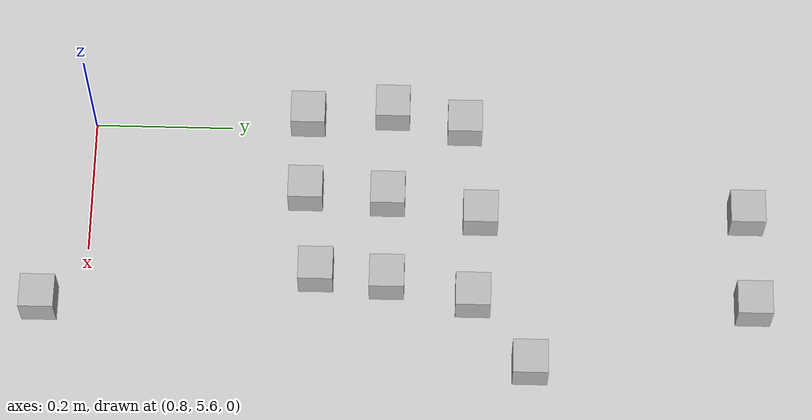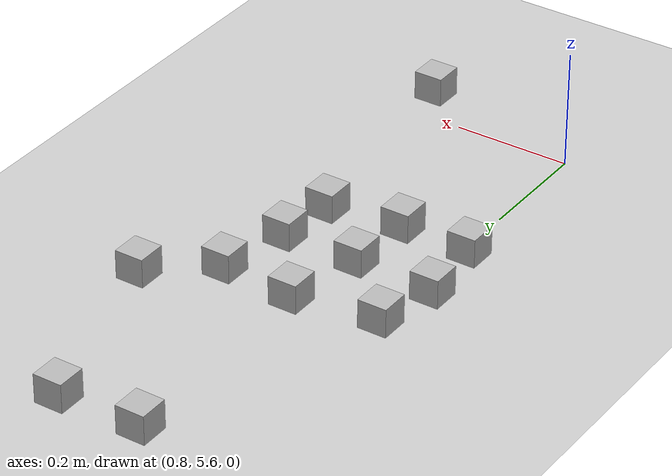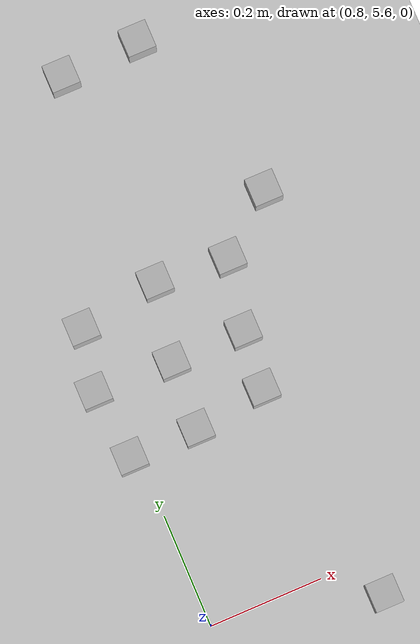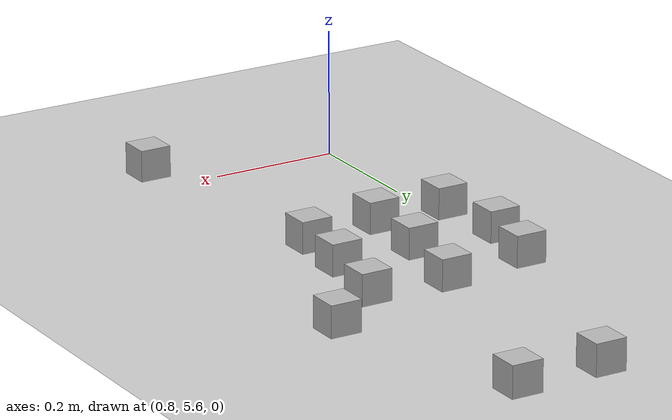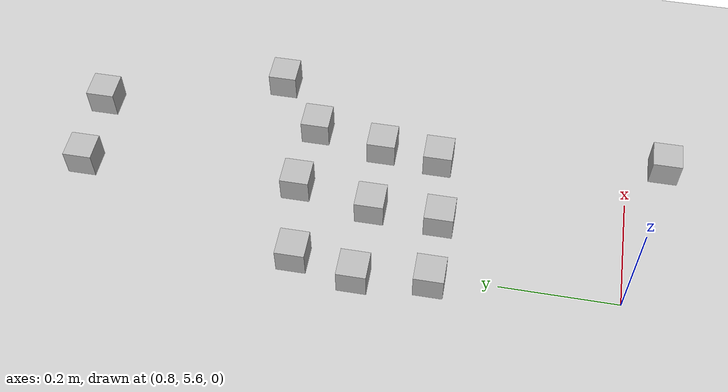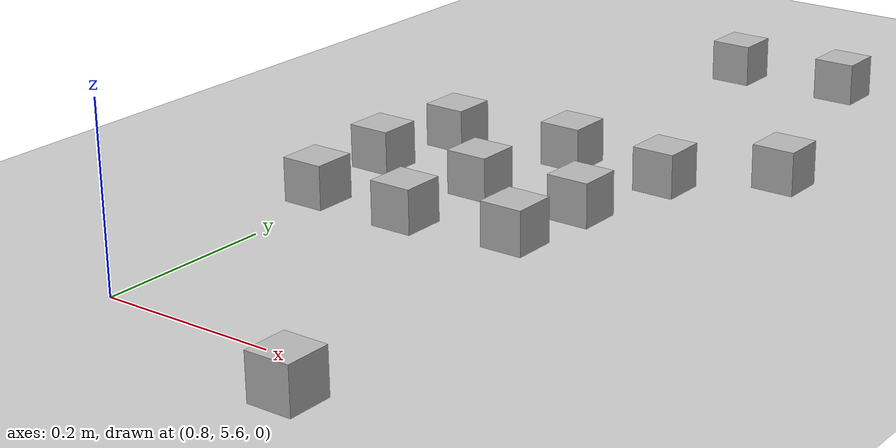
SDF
<sdf version="1.4">
 <world name="default">
  <model name="ground_plane">
   <static>1</static>
   <link name="link">
    <collision name="collision">
     <geometry><plane><normal>0 0 1</normal><size>100 100</size></plane></geometry>
     <surface><friction><ode><mu>100</mu><mu2>50</mu2></ode></friction></surface>
    </collision>
    <visual name="visual">
     <cast_shadows>0</cast_shadows>
     <geometry><plane><normal>0 0 1</normal><size>100 100</size></plane></geometry>
     <material>
      <script><uri>file://media/materials/scripts/gazebo.material</uri><name>Gazebo/Grey</name></script>
     </material>
    </visual>
    <velocity_decay><linear>0</linear><angular>0</angular></velocity_decay>
   </link>
  </model>
  <model name="at25">
   <static>0</static>
   <link name="link">
    <inertial>
     <mass>0.01</mass>
     <inertia><ixx>4e-05</ixx><ixy>0</ixy><ixz>0</ixz><iyy>4e-05</iyy><iyz>0</iyz><izz>4e-05</izz></inertia>
    </inertial>
    <visual name="visual">
     <geometry><box><size>0.05 0.05 0.05</size></box></geometry>
     <material>
      <script>
       <uri>model://at0/materials/scripts</uri>
       <uri>model://at0/materials/textures</uri>
       <name>at0/Diffuse</name>
      </script>
     </material>
    </visual>
    <collision name="collision">
     <geometry><box><size>0.05 0.05 0.05</size></box></geometry>
     <surface><friction><ode><mu>0.8</mu><mu2>0.7</mu2></ode></friction></surface>
    </collision>
    <velocity_decay><linear>0</linear><angular>0</angular></velocity_decay>
   </link>
   <pose>0.795828 6.14263 0.025 0 -0 0</pose>
  </model>
  <model name="at30">
   <static>0</static>
   <link name="link">
    <inertial>
     <mass>0.01</mass>
     <inertia><ixx>4e-05</ixx><ixy>0</ixy><ixz>0</ixz><iyy>4e-05</iyy><iyz>0</iyz><izz>4e-05</izz></inertia>
    </inertial>
    <visual name="visual">
     <geometry><box><size>0.05 0.05 0.05</size></box></geometry>
     <material>
      <script>
       <uri>model://at0/materials/scripts</uri>
       <uri>model://at0/materials/textures</uri>
       <name>at0/Diffuse</name>
      </script>
     </material>
    </visual>
    <collision name="collision">
     <geometry><box><size>0.05 0.05 0.05</size></box></geometry>
     <surface><friction><ode><mu>0.8</mu><mu2>0.7</mu2></ode></friction></surface>
    </collision>
    <velocity_decay><linear>0</linear><angular>0</angular></velocity_decay>
   </link>
   <pose>1.03376 5.93127 0.025 0 -0 0</pose>
  </model>
  <model name="at230">
   <static>0</static>
   <link name="link">
    <inertial>
     <mass>0.01</mass>
     <inertia><ixx>4e-05</ixx><ixy>0</ixy><ixz>0</ixz><iyy>4e-05</iyy><iyz>0</iyz><izz>4e-05</izz></inertia>
    </inertial>
    <visual name="visual">
     <geometry><box><size>0.05 0.05 0.05</size></box></geometry>
     <material>
      <script>
       <uri>model://at0/materials/scripts</uri>
       <uri>model://at0/materials/textures</uri>
       <name>at0/Diffuse</name>
      </script>
     </material>
    </visual>
    <collision name="collision">
     <geometry><box><size>0.05 0.05 0.05</size></box></geometry>
     <surface><friction><ode><mu>0.8</mu><mu2>0.7</mu2></ode></friction></surface>
    </collision>
    <velocity_decay><linear>0</linear><angular>0</angular></velocity_decay>
   </link>
   <pose>0.931648 6.55184 0.025 0 -0 0</pose>
  </model>
  <model name="at235">
   <static>0</static>
   <link name="link">
    <inertial>
     <mass>0.01</mass>
     <inertia><ixx>4e-05</ixx><ixy>0</ixy><ixz>0</ixz><iyy>4e-05</iyy><iyz>0</iyz><izz>4e-05</izz></inertia>
    </inertial>
    <visual name="visual">
     <geometry><box><size>0.05 0.05 0.05</size></box></geometry>
     <material>
      <script>
       <uri>model://at0/materials/scripts</uri>
       <uri>model://at0/materials/textures</uri>
       <name>at0/Diffuse</name>
      </script>
     </material>
    </visual>
    <collision name="collision">
     <geometry><box><size>0.05 0.05 0.05</size></box></geometry>
     <surface><friction><ode><mu>0.8</mu><mu2>0.7</mu2></ode></friction></surface>
    </collision>
    <velocity_decay><linear>0</linear><angular>0</angular></velocity_decay>
   </link>
   <pose>1.07319 6.55794 0.025 0 -0 0</pose>
  </model>
  <model name="at242">
   <static>0</static>
   <link name="link">
    <inertial>
     <mass>0.01</mass>
     <inertia><ixx>4e-05</ixx><ixy>0</ixy><ixz>0</ixz><iyy>4e-05</iyy><iyz>0</iyz><izz>4e-05</izz></inertia>
    </inertial>
    <visual name="visual">
     <geometry><box><size>0.05 0.05 0.05</size></box></geometry>
     <material>
      <script>
       <uri>model://at0/materials/scripts</uri>
       <uri>model://at0/materials/textures</uri>
       <name>at0/Diffuse</name>
      </script>
     </material>
    </visual>
    <collision name="collision">
     <geometry><box><size>0.05 0.05 0.05</size></box></geometry>
     <surface><friction><ode><mu>0.8</mu><mu2>0.7</mu2></ode></friction></surface>
    </collision>
    <velocity_decay><linear>0</linear><angular>0</angular></velocity_decay>
   </link>
   <pose>1.16972 6.23923 0.025 0 -0 0</pose>
  </model>
  <model name="at244">
   <static>0</static>
   <link name="link">
    <inertial>
     <mass>0.01</mass>
     <inertia><ixx>4e-05</ixx><ixy>0</ixy><ixz>0</ixz><iyy>4e-05</iyy><iyz>0</iyz><izz>4e-05</izz></inertia>
    </inertial>
    <visual name="visual">
     <geometry><box><size>0.05 0.05 0.05</size></box></geometry>
     <material>
      <script>
       <uri>model://at0/materials/scripts</uri>
       <uri>model://at0/materials/textures</uri>
       <name>at0/Diffuse</name>
      </script>
     </material>
    </visual>
    <collision name="collision">
     <geometry><box><size>0.05 0.05 0.05</size></box></geometry>
     <surface><friction><ode><mu>0.8</mu><mu2>0.7</mu2></ode></friction></surface>
    </collision>
    <velocity_decay><linear>0</linear><angular>0</angular></velocity_decay>
   </link>
   <pose>0.773255 6.03651 0.025 0 -0 0</pose>
  </model>
  <model name="at246">
   <static>0</static>
   <link name="link">
    <inertial>
     <mass>0.01</mass>
     <inertia><ixx>4e-05</ixx><ixy>0</ixy><ixz>0</ixz><iyy>4e-05</iyy><iyz>0</iyz><izz>4e-05</izz></inertia>
    </inertial>
    <visual name="visual">
     <geometry><box><size>0.05 0.05 0.05</size></box></geometry>
     <material>
      <script>
       <uri>model://at0/materials/scripts</uri>
       <uri>model://at0/materials/textures</uri>
       <name>at0/Diffuse</name>
      </script>
     </material>
    </visual>
    <collision name="collision">
     <geometry><box><size>0.05 0.05 0.05</size></box></geometry>
     <surface><friction><ode><mu>0.8</mu><mu2>0.7</mu2></ode></friction></surface>
    </collision>
    <velocity_decay><linear>0</linear><angular>0</angular></velocity_decay>
   </link>
   <pose>0.912823 6.03198 0.025 0 -0 0</pose>
  </model>
  <model name="at247">
   <static>0</static>
   <link name="link">
    <inertial>
     <mass>0.01</mass>
     <inertia><ixx>4e-05</ixx><ixy>0</ixy><ixz>0</ixz><iyy>4e-05</iyy><iyz>0</iyz><izz>4e-05</izz></inertia>
    </inertial>
    <visual name="visual">
     <geometry><box><size>0.05 0.05 0.05</size></box></geometry>
     <material>
      <script>
       <uri>model://at0/materials/scripts</uri>
       <uri>model://at0/materials/textures</uri>
       <name>at0/Diffuse</name>
      </script>
     </material>
    </visual>
    <collision name="collision">
     <geometry><box><size>0.05 0.05 0.05</size></box></geometry>
     <surface><friction><ode><mu>0.8</mu><mu2>0.7</mu2></ode></friction></surface>
    </collision>
    <velocity_decay><linear>0</linear><angular>0</angular></velocity_decay>
   </link>
   <pose>1.04359 6.03341 0.025 0 -0 0</pose>
  </model>
  <model name="at249">
   <static>0</static>
   <link name="link">
    <inertial>
     <mass>0.01</mass>
     <inertia><ixx>4e-05</ixx><ixy>0</ixy><ixz>0</ixz><iyy>4e-05</iyy><iyz>0</iyz><izz>4e-05</izz></inertia>
    </inertial>
    <visual name="visual">
     <geometry><box><size>0.05 0.05 0.05</size></box></geometry>
     <material>
      <script>
       <uri>model://at0/materials/scripts</uri>
       <uri>model://at0/materials/textures</uri>
       <name>at0/Diffuse</name>
      </script>
     </material>
    </visual>
    <collision name="collision">
     <geometry><box><size>0.05 0.05 0.05</size></box></geometry>
     <surface><friction><ode><mu>0.8</mu><mu2>0.7</mu2></ode></friction></surface>
    </collision>
    <velocity_decay><linear>0</linear><angular>0</angular></velocity_decay>
   </link>
   <pose>0.939888 6.1668 0.025 0 -0 0</pose>
  </model>
  <model name="at252">
   <static>0</static>
   <link name="link">
    <inertial>
     <mass>0.01</mass>
     <inertia><ixx>4e-05</ixx><ixy>0</ixy><ixz>0</ixz><iyy>4e-05</iyy><iyz>0</iyz><izz>4e-05</izz></inertia>
    </inertial>
    <visual name="visual">
     <geometry><box><size>0.05 0.05 0.05</size></box></geometry>
     <material>
      <script>
       <uri>model://at0/materials/scripts</uri>
       <uri>model://at0/materials/textures</uri>
       <name>at0/Diffuse</name>
      </script>
     </material>
    </visual>
    <collision name="collision">
     <geometry><box><size>0.05 0.05 0.05</size></box></geometry>
     <surface><friction><ode><mu>0.8</mu><mu2>0.7</mu2></ode></friction></surface>
    </collision>
    <velocity_decay><linear>0</linear><angular>0</angular></velocity_decay>
   </link>
   <pose>0.906275 5.91243 0.025 0 -0 0</pose>
  </model>
  <model name="at253">
   <static>0</static>
   <link name="link">
    <inertial>
     <mass>0.01</mass>
     <inertia><ixx>4e-05</ixx><ixy>0</ixy><ixz>0</ixz><iyy>4e-05</iyy><iyz>0</iyz><izz>4e-05</izz></inertia>
    </inertial>
    <visual name="visual">
     <geometry><box><size>0.05 0.05 0.05</size></box></geometry>
     <material>
      <script>
       <uri>model://at0/materials/scripts</uri>
       <uri>model://at0/materials/textures</uri>
       <name>at0/Diffuse</name>
      </script>
     </material>
    </visual>
    <collision name="collision">
     <geometry><box><size>0.05 0.05 0.05</size></box></geometry>
     <surface><friction><ode><mu>0.8</mu><mu2>0.7</mu2></ode></friction></surface>
    </collision>
    <velocity_decay><linear>0</linear><angular>0</angular></velocity_decay>
   </link>
   <pose>1.0689 6.15718 0.025 0 -0 0</pose>
  </model>
  <model name="at254">
   <static>0</static>
   <link name="link">
    <inertial>
     <mass>0.01</mass>
     <inertia><ixx>4e-05</ixx><ixy>0</ixy><ixz>0</ixz><iyy>4e-05</iyy><iyz>0</iyz><izz>4e-05</izz></inertia>
    </inertial>
    <visual name="visual">
     <geometry><box><size>0.05 0.05 0.05</size></box></geometry>
     <material>
      <script>
       <uri>model://at0/materials/scripts</uri>
       <uri>model://at0/materials/textures</uri>
       <name>at0/Diffuse</name>
      </script>
     </material>
    </visual>
    <collision name="collision">
     <geometry><box><size>0.05 0.05 0.05</size></box></geometry>
     <surface><friction><ode><mu>0.8</mu><mu2>0.7</mu2></ode></friction></surface>
    </collision>
    <velocity_decay><linear>0</linear><angular>0</angular></velocity_decay>
   </link>
   <pose>1.08536 5.53649 0.025 0 -0 0</pose>
  </model>
  <model name="at255">
   <static>0</static>
   <link name="link">
    <inertial>
     <mass>0.01</mass>
     <inertia><ixx>4e-05</ixx><ixy>0</ixy><ixz>0</ixz><iyy>4e-05</iyy><iyz>0</iyz><izz>4e-05</izz></inertia>
    </inertial>
    <visual name="visual">
     <geometry><box><size>0.05 0.05 0.05</size></box></geometry>
     <material>
      <script>
       <uri>model://at0/materials/scripts</uri>
       <uri>model://at0/materials/textures</uri>
       <name>at0/Diffuse</name>
      </script>
     </material>
    </visual>
    <collision name="collision">
     <geometry><box><size>0.05 0.05 0.05</size></box></geometry>
     <surface><friction><ode><mu>0.8</mu><mu2>0.7</mu2></ode></friction></surface>
    </collision>
    <velocity_decay><linear>0</linear><angular>0</angular></velocity_decay>
   </link>
   <pose>0.78603 5.91235 0.025 0 -0 0</pose>
  </model>
 </world>
</sdf>
